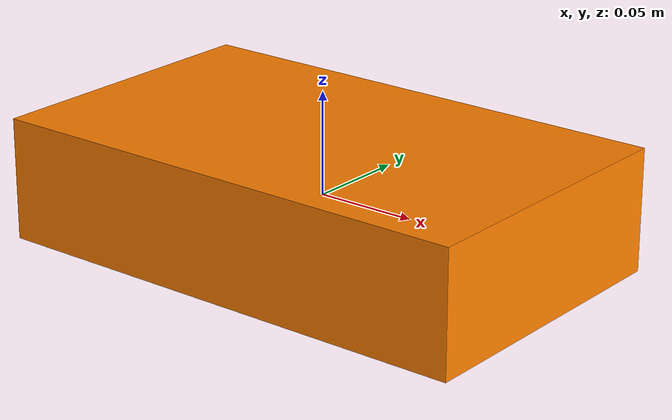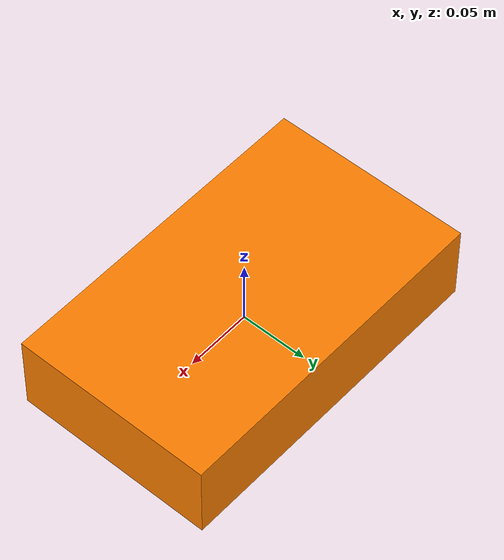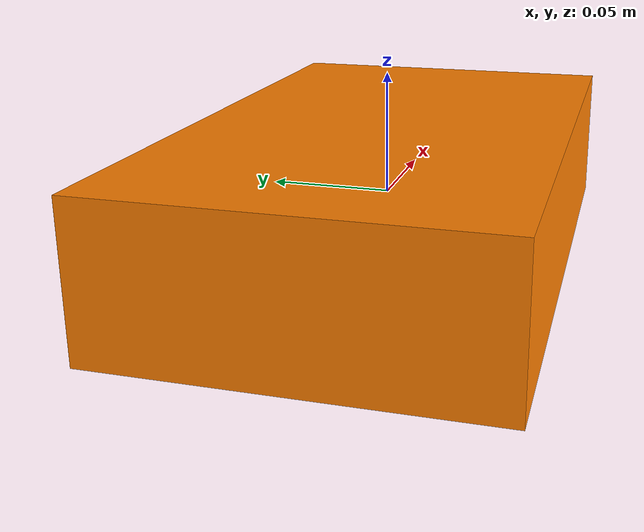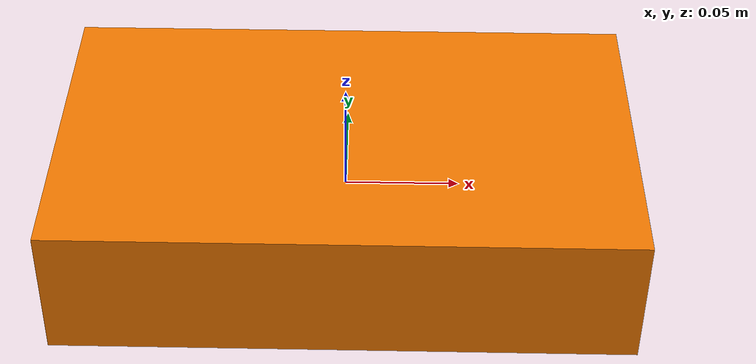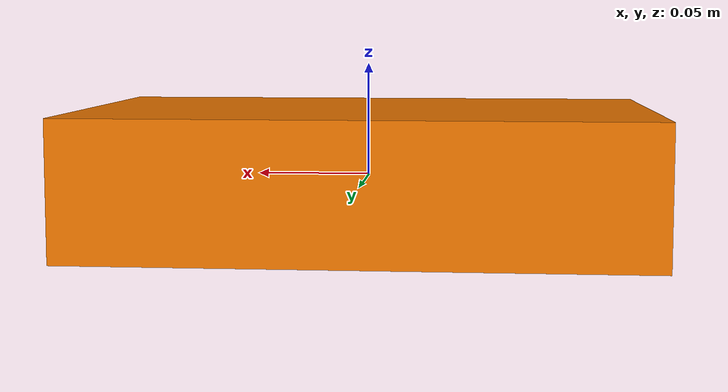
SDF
<?xml version="1.0" ?>
<sdf version="1.5">
  <model name="rc_car">
    <pose>0 0 0 0 0 0</pose>

    <!-- Base Link -->
    <link name="base_link">
      <inertial>
        <pose>0 0 0.03 0 0 0</pose>
        <mass>1.0</mass>
        <inertia>
          <ixx>0.05</ixx>
          <ixy>0.0</ixy>
          <ixz>0.0</ixz>
          <iyy>0.05</iyy>
          <iyz>0.0</iyz>
          <izz>0.09</izz>
        </inertia>
      </inertial>
      <visual name="base_visual">
        <geometry>
          <box>
            <size>0.25 0.15 0.06</size>
          </box>
        </geometry>
        <material name="orange">
          <ambient>1.0 0.5 0.0 1.0</ambient>
          <diffuse>1.0 0.5 0.0 1.0</diffuse>
        </material>
      </visual>
      <collision name="base_collision">
        <geometry>
          <box>
            <size>0.25 0.15 0.06</size>
          </box>
        </geometry>
      </collision>
    </link>

    <!-- IMU Sensor -->
    <link name="imu_link">
      <inertial>
        <mass>0.05</mass>
        <inertia>
          <ixx>0.0001</ixx>
          <ixy>0.0</ixy>
          <ixz>0.0</ixz>
          <iyy>0.0001</iyy>
          <iyz>0.0</iyz>
          <izz>0.0001</izz>
        </inertia>
      </inertial>
      <sensor name="rc_car_imu" type="imu">
        <always_on>true</always_on>
        <update_rate>30</update_rate>
        <imu>
          <angular_velocity>
            <x><noise type="gaussian" mean="0.0" stddev="2e-4"/></x>
            <y><noise type="gaussian" mean="0.0" stddev="2e-4"/></y>
            <z><noise type="gaussian" mean="0.0" stddev="2e-4"/></z>
          </angular_velocity>
          <linear_acceleration>
            <x><noise type="gaussian" mean="0.0" stddev="1.7e-2"/></x>
            <y><noise type="gaussian" mean="0.0" stddev="1.7e-2"/></y>
            <z><noise type="gaussian" mean="0.0" stddev="1.7e-2"/></z>
          </linear_acceleration>
        </imu>
        <plugin name="rc_car_imu_plugin" filename="libgazebo_ros_imu_sensor.so">
          <ros>
            <remapping>~/out:=imu</remapping>
          </ros>
        </plugin>
      </sensor>
    </link>

    <!-- Front Left Wheel -->
    <link name="front_left_wheel">
      <inertial>
        <mass>0.1</mass>
      </inertial>
      <visual name="front_left_wheel_visual">
        <geometry>
          <cylinder>
            <radius>0.03</radius>
            <length>0.02</length>
          </cylinder>
        </geometry>
      </visual>
      <collision name="front_left_wheel_collision">
        <geometry>
          <cylinder>
            <radius>0.03</radius>
            <length>0.02</length>
          </cylinder>
        </geometry>
      </collision>
    </link>
    <joint name="front_left_wheel_joint" type="revolute">
      <parent>base_link</parent>
      <child>front_left_wheel</child>
      <pose>0.1 0.07 0.03 0 0 0</pose>
      <axis>
        <xyz>0 1 0</xyz>
      </axis>
    </joint>

    <!-- Rear Caster -->
    <link name="rear_caster">
      <inertial>
        <mass>0.05</mass>
      </inertial>
      <visual name="rear_caster_visual">
        <geometry>
          <sphere>
            <radius>0.02</radius>
          </sphere>
        </geometry>
      </visual>
      <collision name="rear_caster_collision">
        <geometry>
          <sphere>
            <radius>0.02</radius>
          </sphere>
        </geometry>
      </collision>
    </link>
    <joint name="rear_caster_joint" type="fixed">
      <parent>base_link</parent>
      <child>rear_caster</child>
      <pose>-0.1 0 0.02 0 0 0</pose>
    </joint>

    <!-- Plugins -->
    <plugin name="rc_car_diff_drive" filename="libgazebo_ros_diff_drive.so">
      <ros>
        <namespace>/rc_car</namespace>
      </ros>
      <left_joint>front_left_wheel_joint</left_joint>
      <right_joint>front_right_wheel_joint</right_joint>
      <wheel_separation>0.14</wheel_separation>
      <wheel_diameter>0.06</wheel_diameter>
      <update_rate>50</update_rate>
    </plugin>
    <plugin name="rc_car_joint_state" filename="libgazebo_ros_joint_state_publisher.so">
      <ros>
        <remapping>~/out:=joint_states</remapping>
      </ros>
      <update_rate>30</update_rate>
      <joint_name>front_left_wheel_joint</joint_name>
      <joint_name>front_right_wheel_joint</joint_name>
    </plugin>
  </model>
</sdf>
